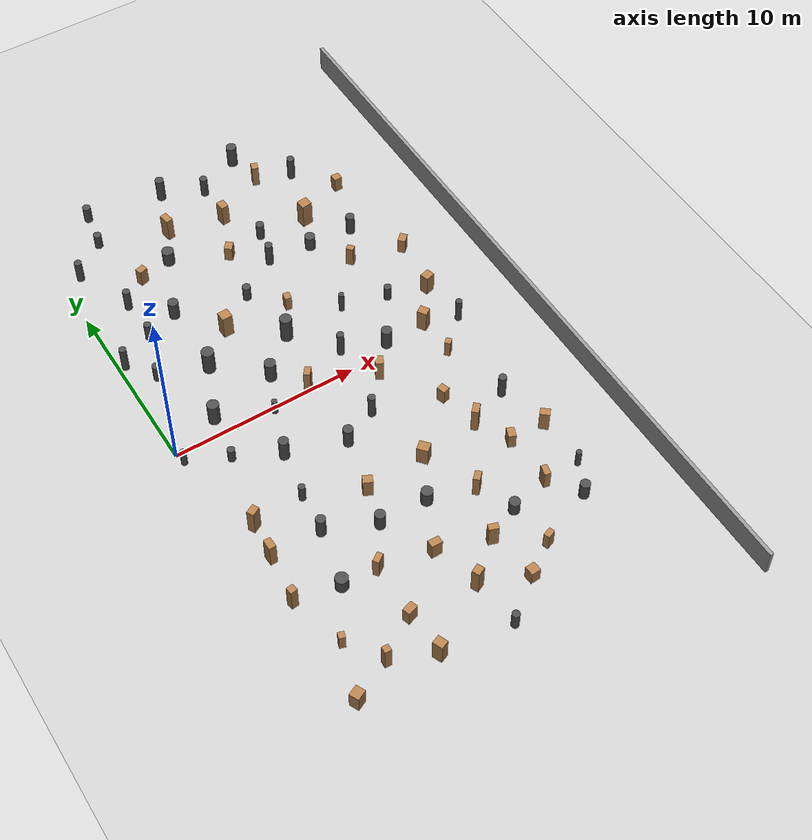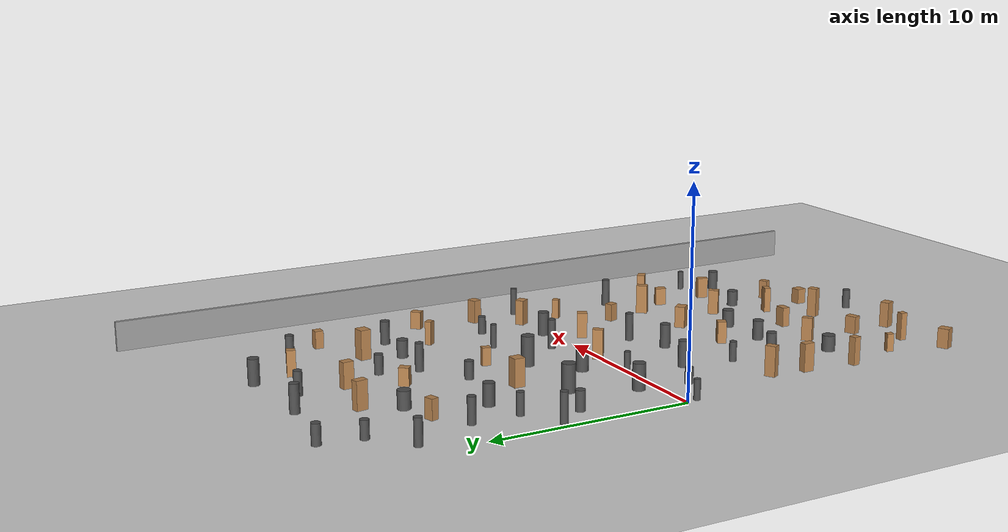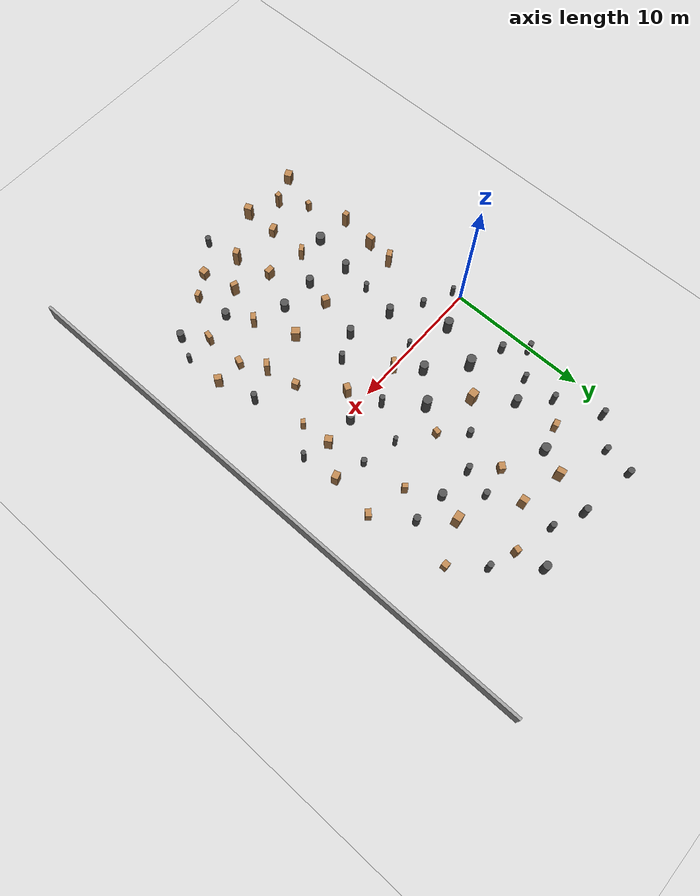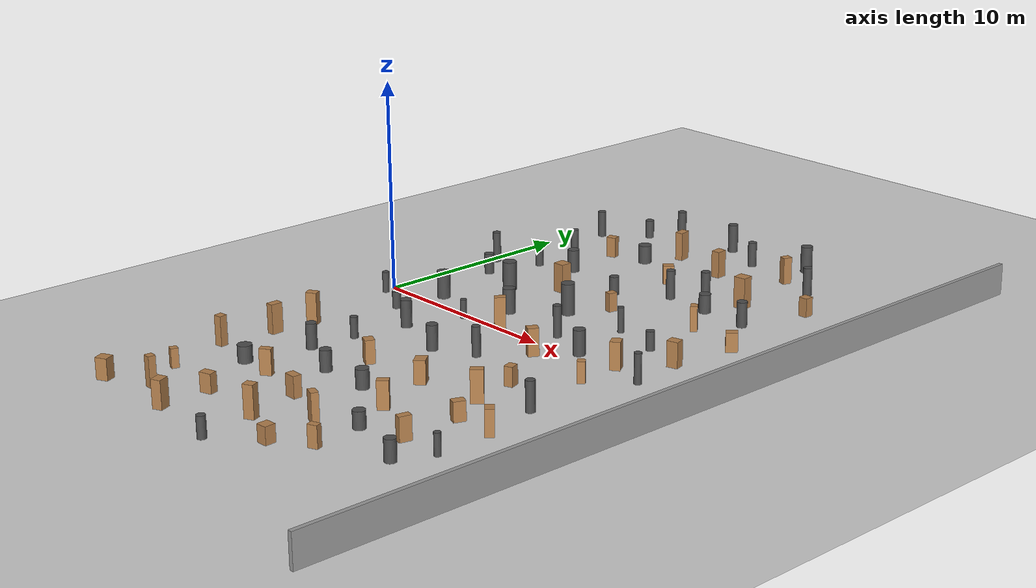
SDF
<sdf version="1.6">
 <world name="default">
  <model name="ground_plane">
   <static>1</static>
   <link name="link">
    <collision name="collision">
     <geometry><plane><normal>0 0 1</normal><size>80 80</size></plane></geometry>
     <surface><friction><ode><mu>0.5</mu><mu2>0.5</mu2></ode></friction></surface>
    </collision>
    <visual name="visual">
     <cast_shadows>0</cast_shadows>
     <geometry><plane><normal>0 0 1</normal><size>80 80</size></plane></geometry>
     <material>
      <script><uri>file://media/materials/scripts/gazebo.material</uri><name>Gazebo/Grey</name></script>
     </material>
    </visual>
   </link>
  </model>
  <model name="wall_east">
   <static>1</static>
   <link name="link">
    <collision name="collision"><geometry><box><size>0.2 40.4 1.5</size></box></geometry></collision>
    <visual name="visual">
     <geometry><box><size>0.2 40.4 1.5</size></box></geometry>
     <material>
      <script><uri>file://media/materials/scripts/gazebo.material</uri><name>Gazebo/Grey</name></script>
     </material>
    </visual>
   </link>
   <pose>20.1 0 0.75 0 0 0</pose>
  </model>
  <model name="obs_001">
   <static>1</static>
   <link name="link">
    <collision name="collision">
     <geometry><cylinder><radius>0.3</radius><length>1.2</length></cylinder></geometry>
    </collision>
    <visual name="visual">
     <geometry><cylinder><radius>0.3</radius><length>1.2</length></cylinder></geometry>
     <material>
      <script><uri>file://media/materials/scripts/gazebo.material</uri><name>Gazebo/DarkGrey</name></script>
     </material>
    </visual>
   </link>
   <pose>6.27 1.75 0.60 0 0 0</pose>
  </model>
  <model name="obs_002">
   <static>1</static>
   <link name="link">
    <collision name="collision"><geometry><box><size>0.43 0.35 0.9</size></box></geometry></collision>
    <visual name="visual">
     <geometry><box><size>0.43 0.35 0.9</size></box></geometry>
     <material>
      <script><uri>file://media/materials/scripts/gazebo.material</uri><name>Gazebo/Wood</name></script>
     </material>
    </visual>
   </link>
   <pose>9.28 5.33 0.45 0 0 1.4</pose>
  </model>
  <model name="obs_004">
   <static>1</static>
   <link name="link">
    <collision name="collision"><geometry><box><size>0.52 0.34 1.3</size></box></geometry></collision>
    <visual name="visual">
     <geometry><box><size>0.52 0.34 1.3</size></box></geometry>
     <material>
      <script><uri>file://media/materials/scripts/gazebo.material</uri><name>Gazebo/Wood</name></script>
     </material>
    </visual>
   </link>
   <pose>11.25 -9.38 0.65 0 0 -2.36</pose>
  </model>
  <model name="obs_005">
   <static>1</static>
   <link name="link">
    <collision name="collision"><geometry><box><size>0.32 0.4 1.2</size></box></geometry></collision>
    <visual name="visual">
     <geometry><box><size>0.32 0.4 1.2</size></box></geometry>
     <material>
      <script><uri>file://media/materials/scripts/gazebo.material</uri><name>Gazebo/Wood</name></script>
     </material>
    </visual>
   </link>
   <pose>13.64 6.23 0.60 0 0 0.68</pose>
  </model>
  <model name="obs_007">
   <static>1</static>
   <link name="link">
    <collision name="collision">
     <geometry><cylinder><radius>0.15</radius><length>0.9</length></cylinder></geometry>
    </collision>
    <visual name="visual">
     <geometry><cylinder><radius>0.15</radius><length>0.9</length></cylinder></geometry>
     <material>
      <script><uri>file://media/materials/scripts/gazebo.material</uri><name>Gazebo/DarkGrey</name></script>
     </material>
    </visual>
   </link>
   <pose>5.39 -0.22 0.45 0 0 0</pose>
  </model>
  <model name="obs_010">
   <static>1</static>
   <link name="link">
    <collision name="collision">
     <geometry><cylinder><radius>0.28</radius><length>0.9</length></cylinder></geometry>
    </collision>
    <visual name="visual">
     <geometry><cylinder><radius>0.28</radius><length>0.9</length></cylinder></geometry>
     <material>
      <script><uri>file://media/materials/scripts/gazebo.material</uri><name>Gazebo/DarkGrey</name></script>
     </material>
    </visual>
   </link>
   <pose>12.36 8.30 0.45 0 0 0</pose>
  </model>
  <model name="obs_011">
   <static>1</static>
   <link name="link">
    <collision name="collision">
     <geometry><cylinder><radius>0.32</radius><length>1.5</length></cylinder></geometry>
    </collision>
    <visual name="visual">
     <geometry><cylinder><radius>0.32</radius><length>1.5</length></cylinder></geometry>
     <material>
      <script><uri>file://media/materials/scripts/gazebo.material</uri><name>Gazebo/DarkGrey</name></script>
     </material>
    </visual>
   </link>
   <pose>8.24 3.60 0.75 0 0 0</pose>
  </model>
  <model name="obs_018">
   <static>1</static>
   <link name="link">
    <collision name="collision"><geometry><box><size>0.54 0.32 1.2</size></box></geometry></collision>
    <visual name="visual">
     <geometry><box><size>0.54 0.32 1.2</size></box></geometry>
     <material>
      <script><uri>file://media/materials/scripts/gazebo.material</uri><name>Gazebo/Wood</name></script>
     </material>
    </visual>
   </link>
   <pose>4.94 -10.66 0.60 0 0 0.6</pose>
  </model>
  <model name="obs_020">
   <static>1</static>
   <link name="link">
    <collision name="collision"><geometry><box><size>0.38 0.48 1.0</size></box></geometry></collision>
    <visual name="visual">
     <geometry><box><size>0.38 0.48 1.0</size></box></geometry>
     <material>
      <script><uri>file://media/materials/scripts/gazebo.material</uri><name>Gazebo/Wood</name></script>
     </material>
    </visual>
   </link>
   <pose>3.69 10.87 0.50 0 0 1.87</pose>
  </model>
  <model name="obs_021">
   <static>1</static>
   <link name="link">
    <collision name="collision">
     <geometry><cylinder><radius>0.27</radius><length>1.0</length></cylinder></geometry>
    </collision>
    <visual name="visual">
     <geometry><cylinder><radius>0.27</radius><length>1.0</length></cylinder></geometry>
     <material>
      <script><uri>file://media/materials/scripts/gazebo.material</uri><name>Gazebo/DarkGrey</name></script>
     </material>
    </visual>
   </link>
   <pose>6.32 -8.61 0.50 0 0 0</pose>
  </model>
  <model name="obs_023">
   <static>1</static>
   <link name="link">
    <collision name="collision"><geometry><box><size>0.51 0.51 0.8</size></box></geometry></collision>
    <visual name="visual">
     <geometry><box><size>0.51 0.51 0.8</size></box></geometry>
     <material>
      <script><uri>file://media/materials/scripts/gazebo.material</uri><name>Gazebo/Wood</name></script>
     </material>
    </visual>
   </link>
   <pose>10.76 -14.71 0.40 0 0 1.63</pose>
  </model>
  <model name="obs_025">
   <static>1</static>
   <link name="link">
    <collision name="collision">
     <geometry><cylinder><radius>0.28</radius><length>1.2</length></cylinder></geometry>
    </collision>
    <visual name="visual">
     <geometry><cylinder><radius>0.28</radius><length>1.2</length></cylinder></geometry>
     <material>
      <script><uri>file://media/materials/scripts/gazebo.material</uri><name>Gazebo/DarkGrey</name></script>
     </material>
    </visual>
   </link>
   <pose>12.30 0.46 0.60 0 0 0</pose>
  </model>
  <model name="obs_027">
   <static>1</static>
   <link name="link">
    <collision name="collision">
     <geometry><cylinder><radius>0.26</radius><length>1.2</length></cylinder></geometry>
    </collision>
    <visual name="visual">
     <geometry><cylinder><radius>0.26</radius><length>1.2</length></cylinder></geometry>
     <material>
      <script><uri>file://media/materials/scripts/gazebo.material</uri><name>Gazebo/DarkGrey</name></script>
     </material>
    </visual>
   </link>
   <pose>7.49 -3.77 0.60 0 0 0</pose>
  </model>
  <model name="obs_028">
   <static>1</static>
   <link name="link">
    <collision name="collision">
     <geometry><cylinder><radius>0.19</radius><length>1.1</length></cylinder></geometry>
    </collision>
    <visual name="visual">
     <geometry><cylinder><radius>0.19</radius><length>1.1</length></cylinder></geometry>
     <material>
      <script><uri>file://media/materials/scripts/gazebo.material</uri><name>Gazebo/DarkGrey</name></script>
     </material>
    </visual>
   </link>
   <pose>2.24 7.29 0.55 0 0 0</pose>
  </model>
  <model name="obs_029">
   <static>1</static>
   <link name="link">
    <collision name="collision"><geometry><box><size>0.43 0.51 0.9</size></box></geometry></collision>
    <visual name="visual">
     <geometry><box><size>0.43 0.51 0.9</size></box></geometry>
     <material>
      <script><uri>file://media/materials/scripts/gazebo.material</uri><name>Gazebo/Wood</name></script>
     </material>
    </visual>
   </link>
   <pose>8.39 9.99 0.45 0 0 -0.7</pose>
  </model>
  <model name="obs_030">
   <static>1</static>
   <link name="link">
    <collision name="collision"><geometry><box><size>0.41 0.54 0.9</size></box></geometry></collision>
    <visual name="visual">
     <geometry><box><size>0.41 0.54 0.9</size></box></geometry>
     <material>
      <script><uri>file://media/materials/scripts/gazebo.material</uri><name>Gazebo/Wood</name></script>
     </material>
    </visual>
   </link>
   <pose>16.49 5.60 0.45 0 0 -0.81</pose>
  </model>
  <model name="obs_032">
   <static>1</static>
   <link name="link">
    <collision name="collision"><geometry><box><size>0.36 0.57 1.5</size></box></geometry></collision>
    <visual name="visual">
     <geometry><box><size>0.36 0.57 1.5</size></box></geometry>
     <material>
      <script><uri>file://media/materials/scripts/gazebo.material</uri><name>Gazebo/Wood</name></script>
     </material>
    </visual>
   </link>
   <pose>13.30 -6.17 0.75 0 0 2.38</pose>
  </model>
  <model name="obs_033">
   <static>1</static>
   <link name="link">
    <collision name="collision"><geometry><box><size>0.59 0.38 1.4</size></box></geometry></collision>
    <visual name="visual">
     <geometry><box><size>0.59 0.38 1.4</size></box></geometry>
     <material>
      <script><uri>file://media/materials/scripts/gazebo.material</uri><name>Gazebo/Wood</name></script>
     </material>
    </visual>
   </link>
   <pose>6.33 13.08 0.70 0 0 1.76</pose>
  </model>
  <model name="obs_034">
   <static>1</static>
   <link name="link">
    <collision name="collision">
     <geometry><cylinder><radius>0.2</radius><length>1.3</length></cylinder></geometry>
    </collision>
    <visual name="visual">
     <geometry><cylinder><radius>0.2</radius><length>1.3</length></cylinder></geometry>
     <material>
      <script><uri>file://media/materials/scripts/gazebo.material</uri><name>Gazebo/DarkGrey</name></script>
     </material>
    </visual>
   </link>
   <pose>0.99 12.76 0.65 0 0 0</pose>
  </model>
  <model name="obs_035">
   <static>1</static>
   <link name="link">
    <collision name="collision"><geometry><box><size>0.57 0.37 1.4</size></box></geometry></collision>
    <visual name="visual">
     <geometry><box><size>0.57 0.37 1.4</size></box></geometry>
     <material>
      <script><uri>file://media/materials/scripts/gazebo.material</uri><name>Gazebo/Wood</name></script>
     </material>
    </visual>
   </link>
   <pose>1.07 -7.51 0.70 0 0 1.59</pose>
  </model>
  <model name="obs_036">
   <static>1</static>
   <link name="link">
    <collision name="collision"><geometry><box><size>0.38 0.38 1.4</size></box></geometry></collision>
    <visual name="visual">
     <geometry><box><size>0.38 0.38 1.4</size></box></geometry>
     <material>
      <script><uri>file://media/materials/scripts/gazebo.material</uri><name>Gazebo/Wood</name></script>
     </material>
    </visual>
   </link>
   <pose>0.74 -10.12 0.70 0 0 -1.44</pose>
  </model>
  <model name="obs_039">
   <static>1</static>
   <link name="link">
    <collision name="collision"><geometry><box><size>0.31 0.36 1.0</size></box></geometry></collision>
    <visual name="visual">
     <geometry><box><size>0.31 0.36 1.0</size></box></geometry>
     <material>
      <script><uri>file://media/materials/scripts/gazebo.material</uri><name>Gazebo/Wood</name></script>
     </material>
    </visual>
   </link>
   <pose>14.66 -1.64 0.50 0 0 -0.82</pose>
  </model>
  <model name="obs_041">
   <static>1</static>
   <link name="link">
    <collision name="collision"><geometry><box><size>0.54 0.59 1.5</size></box></geometry></collision>
    <visual name="visual">
     <geometry><box><size>0.54 0.59 1.5</size></box></geometry>
     <material>
      <script><uri>file://media/materials/scripts/gazebo.material</uri><name>Gazebo/Wood</name></script>
     </material>
    </visual>
   </link>
   <pose>13.07 10.06 0.75 0 0 1.69</pose>
  </model>
  <model name="obs_042">
   <static>1</static>
   <link name="link">
    <collision name="collision">
     <geometry><cylinder><radius>0.2</radius><length>0.8</length></cylinder></geometry>
    </collision>
    <visual name="visual">
     <geometry><cylinder><radius>0.2</radius><length>0.8</length></cylinder></geometry>
     <material>
      <script><uri>file://media/materials/scripts/gazebo.material</uri><name>Gazebo/DarkGrey</name></script>
     </material>
    </visual>
   </link>
   <pose>2.23 -1.58 0.40 0 0 0</pose>
  </model>
  <model name="obs_043">
   <static>1</static>
   <link name="link">
    <collision name="collision">
     <geometry><cylinder><radius>0.33</radius><length>1.4</length></cylinder></geometry>
    </collision>
    <visual name="visual">
     <geometry><cylinder><radius>0.33</radius><length>1.4</length></cylinder></geometry>
     <material>
      <script><uri>file://media/materials/scripts/gazebo.material</uri><name>Gazebo/DarkGrey</name></script>
     </material>
    </visual>
   </link>
   <pose>3.91 3.88 0.70 0 0 0</pose>
  </model>
  <model name="obs_045">
   <static>1</static>
   <link name="link">
    <collision name="collision">
     <geometry><cylinder><radius>0.19</radius><length>1.5</length></cylinder></geometry>
    </collision>
    <visual name="visual">
     <geometry><cylinder><radius>0.19</radius><length>1.5</length></cylinder></geometry>
     <material>
      <script><uri>file://media/materials/scripts/gazebo.material</uri><name>Gazebo/DarkGrey</name></script>
     </material>
    </visual>
   </link>
   <pose>0.36 6.18 0.75 0 0 0</pose>
  </model>
  <model name="obs_049">
   <static>1</static>
   <link name="link">
    <collision name="collision"><geometry><box><size>0.41 0.58 0.9</size></box></geometry></collision>
    <visual name="visual">
     <geometry><box><size>0.41 0.58 0.9</size></box></geometry>
     <material>
      <script><uri>file://media/materials/scripts/gazebo.material</uri><name>Gazebo/Wood</name></script>
     </material>
    </visual>
   </link>
   <pose>4.88 -13.51 0.45 0 0 -1.26</pose>
  </model>
  <model name="obs_050">
   <static>1</static>
   <link name="link">
    <collision name="collision">
     <geometry><cylinder><radius>0.24</radius><length>1.2</length></cylinder></geometry>
    </collision>
    <visual name="visual">
     <geometry><cylinder><radius>0.24</radius><length>1.2</length></cylinder></geometry>
     <material>
      <script><uri>file://media/materials/scripts/gazebo.material</uri><name>Gazebo/DarkGrey</name></script>
     </material>
    </visual>
   </link>
   <pose>14.77 8.15 0.60 0 0 0</pose>
  </model>
  <model name="obs_055">
   <static>1</static>
   <link name="link">
    <collision name="collision"><geometry><box><size>0.46 0.52 1.3</size></box></geometry></collision>
    <visual name="visual">
     <geometry><box><size>0.46 0.52 1.3</size></box></geometry>
     <material>
      <script><uri>file://media/materials/scripts/gazebo.material</uri><name>Gazebo/Wood</name></script>
     </material>
    </visual>
   </link>
   <pose>14.54 0.50 0.65 0 0 0.58</pose>
  </model>
  <model name="obs_056">
   <static>1</static>
   <link name="link">
    <collision name="collision">
     <geometry><cylinder><radius>0.2</radius><length>0.9</length></cylinder></geometry>
    </collision>
    <visual name="visual">
     <geometry><cylinder><radius>0.2</radius><length>0.9</length></cylinder></geometry>
     <material>
      <script><uri>file://media/materials/scripts/gazebo.material</uri><name>Gazebo/DarkGrey</name></script>
     </material>
    </visual>
   </link>
   <pose>14.00 3.10 0.45 0 0 0</pose>
  </model>
  <model name="obs_062">
   <static>1</static>
   <link name="link">
    <collision name="collision">
     <geometry><cylinder><radius>0.3</radius><length>0.9</length></cylinder></geometry>
    </collision>
    <visual name="visual">
     <geometry><cylinder><radius>0.3</radius><length>0.9</length></cylinder></geometry>
     <material>
      <script><uri>file://media/materials/scripts/gazebo.material</uri><name>Gazebo/DarkGrey</name></script>
     </material>
    </visual>
   </link>
   <pose>8.90 -8.64 0.45 0 0 0</pose>
  </model>
  <model name="obs_068">
   <static>1</static>
   <link name="link">
    <collision name="collision"><geometry><box><size>0.4 0.55 0.9</size></box></geometry></collision>
    <visual name="visual">
     <geometry><box><size>0.4 0.55 0.9</size></box></geometry>
     <material>
      <script><uri>file://media/materials/scripts/gazebo.material</uri><name>Gazebo/Wood</name></script>
     </material>
    </visual>
   </link>
   <pose>14.20 -7.93 0.45 0 0 2.77</pose>
  </model>
  <model name="obs_069">
   <static>1</static>
   <link name="link">
    <collision name="collision">
     <geometry><cylinder><radius>0.22</radius><length>1.0</length></cylinder></geometry>
    </collision>
    <visual name="visual">
     <geometry><cylinder><radius>0.22</radius><length>1.0</length></cylinder></geometry>
     <material>
      <script><uri>file://media/materials/scripts/gazebo.material</uri><name>Gazebo/DarkGrey</name></script>
     </material>
    </visual>
   </link>
   <pose>3.17 16.39 0.50 0 0 0</pose>
  </model>
  <model name="obs_070">
   <static>1</static>
   <link name="link">
    <collision name="collision"><geometry><box><size>0.36 0.43 1.3</size></box></geometry></collision>
    <visual name="visual">
     <geometry><box><size>0.36 0.43 1.3</size></box></geometry>
     <material>
      <script><uri>file://media/materials/scripts/gazebo.material</uri><name>Gazebo/Wood</name></script>
     </material>
    </visual>
   </link>
   <pose>12.22 14.06 0.65 0 0 2.84</pose>
  </model>
  <model name="obs_071">
   <static>1</static>
   <link name="link">
    <collision name="collision">
     <geometry><cylinder><radius>0.16</radius><length>1.0</length></cylinder></geometry>
    </collision>
    <visual name="visual">
     <geometry><cylinder><radius>0.16</radius><length>1.0</length></cylinder></geometry>
     <material>
      <script><uri>file://media/materials/scripts/gazebo.material</uri><name>Gazebo/DarkGrey</name></script>
     </material>
    </visual>
   </link>
   <pose>0.17 -0.59 0.50 0 0 0</pose>
  </model>
  <model name="obs_073">
   <static>1</static>
   <link name="link">
    <collision name="collision"><geometry><box><size>0.52 0.59 1.1</size></box></geometry></collision>
    <visual name="visual">
     <geometry><box><size>0.52 0.59 1.1</size></box></geometry>
     <material>
      <script><uri>file://media/materials/scripts/gazebo.material</uri><name>Gazebo/Wood</name></script>
     </material>
    </visual>
   </link>
   <pose>10.09 -6.50 0.55 0 0 -2.45</pose>
  </model>
  <model name="obs_074">
   <static>1</static>
   <link name="link">
    <collision name="collision">
     <geometry><cylinder><radius>0.15</radius><length>1.2</length></cylinder></geometry>
    </collision>
    <visual name="visual">
     <geometry><cylinder><radius>0.15</radius><length>1.2</length></cylinder></geometry>
     <material>
      <script><uri>file://media/materials/scripts/gazebo.material</uri><name>Gazebo/DarkGrey</name></script>
     </material>
    </visual>
   </link>
   <pose>11.57 3.70 0.60 0 0 0</pose>
  </model>
  <model name="obs_075">
   <static>1</static>
   <link name="link">
    <collision name="collision"><geometry><box><size>0.52 0.4 1.2</size></box></geometry></collision>
    <visual name="visual">
     <geometry><box><size>0.52 0.4 1.2</size></box></geometry>
     <material>
      <script><uri>file://media/materials/scripts/gazebo.material</uri><name>Gazebo/Wood</name></script>
     </material>
    </visual>
   </link>
   <pose>16.15 -7.97 0.60 0 0 2.42</pose>
  </model>
  <model name="obs_076">
   <static>1</static>
   <link name="link">
    <collision name="collision"><geometry><box><size>0.54 0.42 1.3</size></box></geometry></collision>
    <visual name="visual">
     <geometry><box><size>0.54 0.42 1.3</size></box></geometry>
     <material>
      <script><uri>file://media/materials/scripts/gazebo.material</uri><name>Gazebo/Wood</name></script>
     </material>
    </visual>
   </link>
   <pose>9.36 12.45 0.65 0 0 1.66</pose>
  </model>
  <model name="obs_077">
   <static>1</static>
   <link name="link">
    <collision name="collision"><geometry><box><size>0.46 0.53 1.2</size></box></geometry></collision>
    <visual name="visual">
     <geometry><box><size>0.46 0.53 1.2</size></box></geometry>
     <material>
      <script><uri>file://media/materials/scripts/gazebo.material</uri><name>Gazebo/Wood</name></script>
     </material>
    </visual>
   </link>
   <pose>16.05 2.49 0.60 0 0 -1.31</pose>
  </model>
  <model name="obs_078">
   <static>1</static>
   <link name="link">
    <collision name="collision">
     <geometry><cylinder><radius>0.26</radius><length>1.3</length></cylinder></geometry>
    </collision>
    <visual name="visual">
     <geometry><cylinder><radius>0.26</radius><length>1.3</length></cylinder></geometry>
     <material>
      <script><uri>file://media/materials/scripts/gazebo.material</uri><name>Gazebo/DarkGrey</name></script>
     </material>
    </visual>
   </link>
   <pose>4.47 -2.79 0.65 0 0 0</pose>
  </model>
  <model name="obs_079">
   <static>1</static>
   <link name="link">
    <collision name="collision"><geometry><box><size>0.32 0.34 0.9</size></box></geometry></collision>
    <visual name="visual">
     <geometry><box><size>0.32 0.34 0.9</size></box></geometry>
     <material>
      <script><uri>file://media/materials/scripts/gazebo.material</uri><name>Gazebo/Wood</name></script>
     </material>
    </visual>
   </link>
   <pose>1.57 -13.05 0.45 0 0 2.84</pose>
  </model>
  <model name="obs_082">
   <static>1</static>
   <link name="link">
    <collision name="collision"><geometry><box><size>0.42 0.5 1.3</size></box></geometry></collision>
    <visual name="visual">
     <geometry><box><size>0.42 0.5 1.3</size></box></geometry>
     <material>
      <script><uri>file://media/materials/scripts/gazebo.material</uri><name>Gazebo/Wood</name></script>
     </material>
    </visual>
   </link>
   <pose>10.95 -1.03 0.65 0 0 -0.49</pose>
  </model>
  <model name="obs_084">
   <static>1</static>
   <link name="link">
    <collision name="collision"><geometry><box><size>0.47 0.4 0.9</size></box></geometry></collision>
    <visual name="visual">
     <geometry><box><size>0.47 0.4 0.9</size></box></geometry>
     <material>
      <script><uri>file://media/materials/scripts/gazebo.material</uri><name>Gazebo/Wood</name></script>
     </material>
    </visual>
   </link>
   <pose>12.86 -3.96 0.45 0 0 1.89</pose>
  </model>
  <model name="obs_085">
   <static>1</static>
   <link name="link">
    <collision name="collision"><geometry><box><size>0.51 0.33 1.3</size></box></geometry></collision>
    <visual name="visual">
     <geometry><box><size>0.51 0.33 1.3</size></box></geometry>
     <material>
      <script><uri>file://media/materials/scripts/gazebo.material</uri><name>Gazebo/Wood</name></script>
     </material>
    </visual>
   </link>
   <pose>10.29 -12.13 0.65 0 0 2.82</pose>
  </model>
  <model name="obs_086">
   <static>1</static>
   <link name="link">
    <collision name="collision">
     <geometry><cylinder><radius>0.26</radius><length>1.0</length></cylinder></geometry>
    </collision>
    <visual name="visual">
     <geometry><cylinder><radius>0.26</radius><length>1.0</length></cylinder></geometry>
     <material>
      <script><uri>file://media/materials/scripts/gazebo.material</uri><name>Gazebo/DarkGrey</name></script>
     </material>
    </visual>
   </link>
   <pose>15.43 -12.31 0.50 0 0 0</pose>
  </model>
  <model name="obs_088">
   <static>1</static>
   <link name="link">
    <collision name="collision"><geometry><box><size>0.56 0.33 1.1</size></box></geometry></collision>
    <visual name="visual">
     <geometry><box><size>0.56 0.33 1.1</size></box></geometry>
     <material>
      <script><uri>file://media/materials/scripts/gazebo.material</uri><name>Gazebo/Wood</name></script>
     </material>
    </visual>
   </link>
   <pose>14.26 -10.72 0.55 0 0 -1.8</pose>
  </model>
  <model name="obs_089">
   <static>1</static>
   <link name="link">
    <collision name="collision">
     <geometry><cylinder><radius>0.21</radius><length>1.4</length></cylinder></geometry>
    </collision>
    <visual name="visual">
     <geometry><cylinder><radius>0.21</radius><length>1.4</length></cylinder></geometry>
     <material>
      <script><uri>file://media/materials/scripts/gazebo.material</uri><name>Gazebo/DarkGrey</name></script>
     </material>
    </visual>
   </link>
   <pose>9.99 8.50 0.70 0 0 0</pose>
  </model>
  <model name="obs_091">
   <static>1</static>
   <link name="link">
    <collision name="collision">
     <geometry><cylinder><radius>0.21</radius><length>1.4</length></cylinder></geometry>
    </collision>
    <visual name="visual">
     <geometry><cylinder><radius>0.21</radius><length>1.4</length></cylinder></geometry>
     <material>
      <script><uri>file://media/materials/scripts/gazebo.material</uri><name>Gazebo/DarkGrey</name></script>
     </material>
    </visual>
   </link>
   <pose>14.12 13.41 0.70 0 0 0</pose>
  </model>
  <model name="obs_092">
   <static>1</static>
   <link name="link">
    <collision name="collision">
     <geometry><cylinder><radius>0.24</radius><length>1.4</length></cylinder></geometry>
    </collision>
    <visual name="visual">
     <geometry><cylinder><radius>0.24</radius><length>1.4</length></cylinder></geometry>
     <material>
      <script><uri>file://media/materials/scripts/gazebo.material</uri><name>Gazebo/DarkGrey</name></script>
     </material>
    </visual>
   </link>
   <pose>7.28 15.77 0.70 0 0 0</pose>
  </model>
  <model name="obs_094">
   <static>1</static>
   <link name="link">
    <collision name="collision">
     <geometry><cylinder><radius>0.21</radius><length>0.9</length></cylinder></geometry>
    </collision>
    <visual name="visual">
     <geometry><cylinder><radius>0.21</radius><length>0.9</length></cylinder></geometry>
     <material>
      <script><uri>file://media/materials/scripts/gazebo.material</uri><name>Gazebo/DarkGrey</name></script>
     </material>
    </visual>
   </link>
   <pose>2.82 14.37 0.45 0 0 0</pose>
  </model>
  <model name="obs_095">
   <static>1</static>
   <link name="link">
    <collision name="collision">
     <geometry><cylinder><radius>0.21</radius><length>1.2</length></cylinder></geometry>
    </collision>
    <visual name="visual">
     <geometry><cylinder><radius>0.21</radius><length>1.2</length></cylinder></geometry>
     <material>
      <script><uri>file://media/materials/scripts/gazebo.material</uri><name>Gazebo/DarkGrey</name></script>
     </material>
    </visual>
   </link>
   <pose>9.44 14.79 0.60 0 0 0</pose>
  </model>
  <model name="obs_097">
   <static>1</static>
   <link name="link">
    <collision name="collision"><geometry><box><size>0.32 0.46 1.0</size></box></geometry></collision>
    <visual name="visual">
     <geometry><box><size>0.32 0.46 1.0</size></box></geometry>
     <material>
      <script><uri>file://media/materials/scripts/gazebo.material</uri><name>Gazebo/Wood</name></script>
     </material>
    </visual>
   </link>
   <pose>12.41 -13.63 0.50 0 0 1.94</pose>
  </model>
  <model name="obs_104">
   <static>1</static>
   <link name="link">
    <collision name="collision">
     <geometry><cylinder><radius>0.18</radius><length>1.0</length></cylinder></geometry>
    </collision>
    <visual name="visual">
     <geometry><cylinder><radius>0.18</radius><length>1.0</length></cylinder></geometry>
     <material>
      <script><uri>file://media/materials/scripts/gazebo.material</uri><name>Gazebo/DarkGrey</name></script>
     </material>
    </visual>
   </link>
   <pose>3.99 -5.35 0.50 0 0 0</pose>
  </model>
  <model name="obs_106">
   <static>1</static>
   <link name="link">
    <collision name="collision">
     <geometry><cylinder><radius>0.31</radius><length>1.3</length></cylinder></geometry>
    </collision>
    <visual name="visual">
     <geometry><cylinder><radius>0.31</radius><length>1.3</length></cylinder></geometry>
     <material>
      <script><uri>file://media/materials/scripts/gazebo.material</uri><name>Gazebo/DarkGrey</name></script>
     </material>
    </visual>
   </link>
   <pose>2.62 0.92 0.65 0 0 0</pose>
  </model>
  <model name="obs_107">
   <static>1</static>
   <link name="link">
    <collision name="collision">
     <geometry><cylinder><radius>0.19</radius><length>1.5</length></cylinder></geometry>
    </collision>
    <visual name="visual">
     <geometry><cylinder><radius>0.19</radius><length>1.5</length></cylinder></geometry>
     <material>
      <script><uri>file://media/materials/scripts/gazebo.material</uri><name>Gazebo/DarkGrey</name></script>
     </material>
    </visual>
   </link>
   <pose>10.06 1.25 0.75 0 0 0</pose>
  </model>
  <model name="obs_108">
   <static>1</static>
   <link name="link">
    <collision name="collision">
     <geometry><cylinder><radius>0.25</radius><length>1.2</length></cylinder></geometry>
    </collision>
    <visual name="visual">
     <geometry><cylinder><radius>0.25</radius><length>1.2</length></cylinder></geometry>
     <material>
      <script><uri>file://media/materials/scripts/gazebo.material</uri><name>Gazebo/DarkGrey</name></script>
     </material>
    </visual>
   </link>
   <pose>3.77 -7.49 0.60 0 0 0</pose>
  </model>
  <model name="obs_109">
   <static>1</static>
   <link name="link">
    <collision name="collision"><geometry><box><size>0.43 0.44 0.9</size></box></geometry></collision>
    <visual name="visual">
     <geometry><box><size>0.43 0.44 0.9</size></box></geometry>
     <material>
      <script><uri>file://media/materials/scripts/gazebo.material</uri><name>Gazebo/Wood</name></script>
     </material>
    </visual>
   </link>
   <pose>15.80 11.32 0.45 0 0 -1.56</pose>
  </model>
  <model name="obs_111">
   <static>1</static>
   <link name="link">
    <collision name="collision">
     <geometry><cylinder><radius>0.2</radius><length>1.3</length></cylinder></geometry>
    </collision>
    <visual name="visual">
     <geometry><cylinder><radius>0.2</radius><length>1.3</length></cylinder></geometry>
     <material>
      <script><uri>file://media/materials/scripts/gazebo.material</uri><name>Gazebo/DarkGrey</name></script>
     </material>
    </visual>
   </link>
   <pose>2.25 9.66 0.65 0 0 0</pose>
  </model>
  <model name="obs_113">
   <static>1</static>
   <link name="link">
    <collision name="collision">
     <geometry><cylinder><radius>0.28</radius><length>1.1</length></cylinder></geometry>
    </collision>
    <visual name="visual">
     <geometry><cylinder><radius>0.28</radius><length>1.1</length></cylinder></geometry>
     <material>
      <script><uri>file://media/materials/scripts/gazebo.material</uri><name>Gazebo/DarkGrey</name></script>
     </material>
    </visual>
   </link>
   <pose>4.02 7.91 0.55 0 0 0</pose>
  </model>
  <model name="obs_114">
   <static>1</static>
   <link name="link">
    <collision name="collision">
     <geometry><cylinder><radius>0.22</radius><length>1.0</length></cylinder></geometry>
    </collision>
    <visual name="visual">
     <geometry><cylinder><radius>0.22</radius><length>1.0</length></cylinder></geometry>
     <material>
      <script><uri>file://media/materials/scripts/gazebo.material</uri><name>Gazebo/DarkGrey</name></script>
     </material>
    </visual>
   </link>
   <pose>10.48 10.37 0.50 0 0 0</pose>
  </model>
  <model name="obs_118">
   <static>1</static>
   <link name="link">
    <collision name="collision">
     <geometry><cylinder><radius>0.28</radius><length>1.3</length></cylinder></geometry>
    </collision>
    <visual name="visual">
     <geometry><cylinder><radius>0.28</radius><length>1.3</length></cylinder></geometry>
     <material>
      <script><uri>file://media/materials/scripts/gazebo.material</uri><name>Gazebo/DarkGrey</name></script>
     </material>
    </visual>
   </link>
   <pose>11.84 16.03 0.65 0 0 0</pose>
  </model>
  <model name="obs_119">
   <static>1</static>
   <link name="link">
    <collision name="collision">
     <geometry><cylinder><radius>0.2</radius><length>1.0</length></cylinder></geometry>
    </collision>
    <visual name="visual">
     <geometry><cylinder><radius>0.2</radius><length>1.0</length></cylinder></geometry>
     <material>
      <script><uri>file://media/materials/scripts/gazebo.material</uri><name>Gazebo/DarkGrey</name></script>
     </material>
    </visual>
   </link>
   <pose>8.70 -16.32 0.50 0 0 0</pose>
  </model>
  <model name="obs_121">
   <static>1</static>
   <link name="link">
    <collision name="collision">
     <geometry><cylinder><radius>0.22</radius><length>0.9</length></cylinder></geometry>
    </collision>
    <visual name="visual">
     <geometry><cylinder><radius>0.22</radius><length>0.9</length></cylinder></geometry>
     <material>
      <script><uri>file://media/materials/scripts/gazebo.material</uri><name>Gazebo/DarkGrey</name></script>
     </material>
    </visual>
   </link>
   <pose>7.79 6.98 0.45 0 0 0</pose>
  </model>
  <model name="obs_122">
   <static>1</static>
   <link name="link">
    <collision name="collision"><geometry><box><size>0.54 0.46 1.3</size></box></geometry></collision>
    <visual name="visual">
     <geometry><box><size>0.54 0.46 1.3</size></box></geometry>
     <material>
      <script><uri>file://media/materials/scripts/gazebo.material</uri><name>Gazebo/Wood</name></script>
     </material>
    </visual>
   </link>
   <pose>4.97 -15.84 0.65 0 0 1.97</pose>
  </model>
  <model name="obs_124">
   <static>1</static>
   <link name="link">
    <collision name="collision"><geometry><box><size>0.52 0.56 1.0</size></box></geometry></collision>
    <visual name="visual">
     <geometry><box><size>0.52 0.56 1.0</size></box></geometry>
     <material>
      <script><uri>file://media/materials/scripts/gazebo.material</uri><name>Gazebo/Wood</name></script>
     </material>
    </visual>
   </link>
   <pose>0.69 -15.86 0.50 0 0 -1.13</pose>
  </model>
  <model name="obs_125">
   <static>1</static>
   <link name="link">
    <collision name="collision">
     <geometry><cylinder><radius>0.32</radius><length>0.9</length></cylinder></geometry>
    </collision>
    <visual name="visual">
     <geometry><cylinder><radius>0.32</radius><length>0.9</length></cylinder></geometry>
     <material>
      <script><uri>file://media/materials/scripts/gazebo.material</uri><name>Gazebo/DarkGrey</name></script>
     </material>
    </visual>
   </link>
   <pose>5.47 11.36 0.45 0 0 0</pose>
  </model>
  <model name="obs_126">
   <static>1</static>
   <link name="link">
    <collision name="collision">
     <geometry><cylinder><radius>0.17</radius><length>1.4</length></cylinder></geometry>
    </collision>
    <visual name="visual">
     <geometry><cylinder><radius>0.17</radius><length>1.4</length></cylinder></geometry>
     <material>
      <script><uri>file://media/materials/scripts/gazebo.material</uri><name>Gazebo/DarkGrey</name></script>
     </material>
    </visual>
   </link>
   <pose>16.36 -0.02 0.70 0 0 0</pose>
  </model>
  <model name="obs_128">
   <static>1</static>
   <link name="link">
    <collision name="collision">
     <geometry><cylinder><radius>0.28</radius><length>0.8</length></cylinder></geometry>
    </collision>
    <visual name="visual">
     <geometry><cylinder><radius>0.28</radius><length>0.8</length></cylinder></geometry>
     <material>
      <script><uri>file://media/materials/scripts/gazebo.material</uri><name>Gazebo/DarkGrey</name></script>
     </material>
    </visual>
   </link>
   <pose>12.12 -11.26 0.40 0 0 0</pose>
  </model>
  <model name="obs_132">
   <static>1</static>
   <link name="link">
    <collision name="collision"><geometry><box><size>0.4 0.58 1.0</size></box></geometry></collision>
    <visual name="visual">
     <geometry><box><size>0.4 0.58 1.0</size></box></geometry>
     <material>
      <script><uri>file://media/materials/scripts/gazebo.material</uri><name>Gazebo/Wood</name></script>
     </material>
    </visual>
   </link>
   <pose>7.68 -11.23 0.50 0 0 -1.59</pose>
  </model>
  <model name="obs_136">
   <static>1</static>
   <link name="link">
    <collision name="collision"><geometry><box><size>0.55 0.56 1.4</size></box></geometry></collision>
    <visual name="visual">
     <geometry><box><size>0.55 0.56 1.4</size></box></geometry>
     <material>
      <script><uri>file://media/materials/scripts/gazebo.material</uri><name>Gazebo/Wood</name></script>
     </material>
    </visual>
   </link>
   <pose>5.79 5.53 0.70 0 0 1.59</pose>
  </model>
  <model name="obs_138">
   <static>1</static>
   <link name="link">
    <collision name="collision"><geometry><box><size>0.39 0.52 1.5</size></box></geometry></collision>
    <visual name="visual">
     <geometry><box><size>0.39 0.52 1.5</size></box></geometry>
     <material>
      <script><uri>file://media/materials/scripts/gazebo.material</uri><name>Gazebo/Wood</name></script>
     </material>
    </visual>
   </link>
   <pose>1.27 -5.58 0.75 0 0 2.06</pose>
  </model>
  <model name="obs_139">
   <static>1</static>
   <link name="link">
    <collision name="collision">
     <geometry><cylinder><radius>0.23</radius><length>1.0</length></cylinder></geometry>
    </collision>
    <visual name="visual">
     <geometry><cylinder><radius>0.23</radius><length>1.0</length></cylinder></geometry>
     <material>
      <script><uri>file://media/materials/scripts/gazebo.material</uri><name>Gazebo/DarkGrey</name></script>
     </material>
    </visual>
   </link>
   <pose>1.45 4.73 0.50 0 0 0</pose>
  </model>
  <model name="obs_140">
   <static>1</static>
   <link name="link">
    <collision name="collision">
     <geometry><cylinder><radius>0.33</radius><length>0.8</length></cylinder></geometry>
    </collision>
    <visual name="visual">
     <geometry><cylinder><radius>0.33</radius><length>0.8</length></cylinder></geometry>
     <material>
      <script><uri>file://media/materials/scripts/gazebo.material</uri><name>Gazebo/DarkGrey</name></script>
     </material>
    </visual>
   </link>
   <pose>3.10 -10.50 0.40 0 0 0</pose>
  </model>
  <model name="obs_142">
   <static>1</static>
   <link name="link">
    <collision name="collision">
     <geometry><cylinder><radius>0.21</radius><length>1.4</length></cylinder></geometry>
    </collision>
    <visual name="visual">
     <geometry><cylinder><radius>0.21</radius><length>1.4</length></cylinder></geometry>
     <material>
      <script><uri>file://media/materials/scripts/gazebo.material</uri><name>Gazebo/DarkGrey</name></script>
     </material>
    </visual>
   </link>
   <pose>15.50 -5.25 0.70 0 0 0</pose>
  </model>
  <model name="obs_146">
   <static>1</static>
   <link name="link">
    <collision name="collision"><geometry><box><size>0.41 0.48 1.5</size></box></geometry></collision>
    <visual name="visual">
     <geometry><box><size>0.41 0.48 1.5</size></box></geometry>
     <material>
      <script><uri>file://media/materials/scripts/gazebo.material</uri><name>Gazebo/Wood</name></script>
     </material>
    </visual>
   </link>
   <pose>8.35 -13.77 0.75 0 0 -1.14</pose>
  </model>
  <model name="obs_148">
   <static>1</static>
   <link name="link">
    <collision name="collision"><geometry><box><size>0.34 0.52 1.5</size></box></geometry></collision>
    <visual name="visual">
     <geometry><box><size>0.34 0.52 1.5</size></box></geometry>
     <material>
      <script><uri>file://media/materials/scripts/gazebo.material</uri><name>Gazebo/Wood</name></script>
     </material>
    </visual>
   </link>
   <pose>7.50 0.13 0.75 0 0 -0.68</pose>
  </model>
  <model name="obs_153">
   <static>1</static>
   <link name="link">
    <collision name="collision">
     <geometry><cylinder><radius>0.15</radius><length>1.0</length></cylinder></geometry>
    </collision>
    <visual name="visual">
     <geometry><cylinder><radius>0.15</radius><length>1.0</length></cylinder></geometry>
     <material>
      <script><uri>file://media/materials/scripts/gazebo.material</uri><name>Gazebo/DarkGrey</name></script>
     </material>
    </visual>
   </link>
   <pose>16.25 -10.68 0.50 0 0 0</pose>
  </model>
  <model name="obs_155">
   <static>1</static>
   <link name="link">
    <collision name="collision"><geometry><box><size>0.35 0.34 1.4</size></box></geometry></collision>
    <visual name="visual">
     <geometry><box><size>0.35 0.34 1.4</size></box></geometry>
     <material>
      <script><uri>file://media/materials/scripts/gazebo.material</uri><name>Gazebo/Wood</name></script>
     </material>
    </visual>
   </link>
   <pose>2.77 -14.91 0.70 0 0 3.1</pose>
  </model>
  <model name="obs_156">
   <static>1</static>
   <link name="link">
    <collision name="collision">
     <geometry><cylinder><radius>0.2</radius><length>1.4</length></cylinder></geometry>
    </collision>
    <visual name="visual">
     <geometry><cylinder><radius>0.2</radius><length>1.4</length></cylinder></geometry>
     <material>
      <script><uri>file://media/materials/scripts/gazebo.material</uri><name>Gazebo/DarkGrey</name></script>
     </material>
    </visual>
   </link>
   <pose>9.38 -2.87 0.70 0 0 0</pose>
  </model>
  <model name="obs_158">
   <static>1</static>
   <link name="link">
    <collision name="collision"><geometry><box><size>0.51 0.44 1.1</size></box></geometry></collision>
    <visual name="visual">
     <geometry><box><size>0.51 0.44 1.1</size></box></geometry>
     <material>
      <script><uri>file://media/materials/scripts/gazebo.material</uri><name>Gazebo/Wood</name></script>
     </material>
    </visual>
   </link>
   <pose>6.81 -6.69 0.55 0 0 -0.43</pose>
  </model>
 </world>
</sdf>
